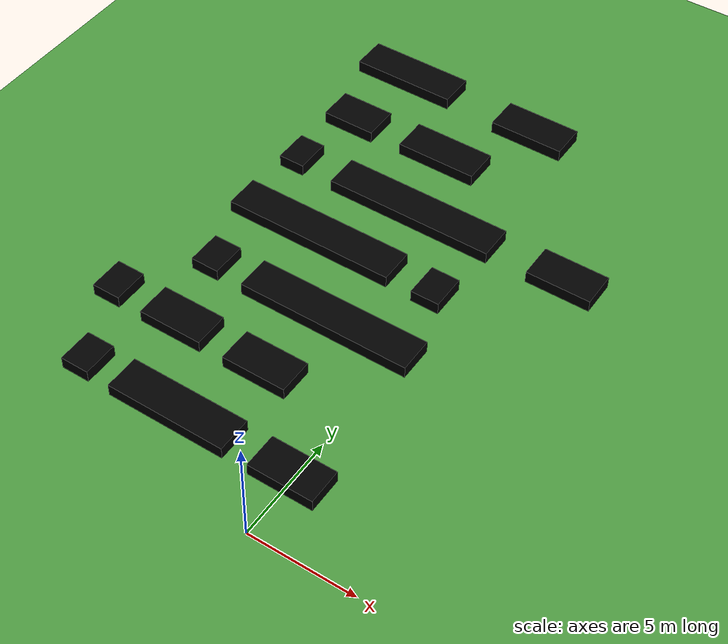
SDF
<sdf version="1.6">
 <world name="default">
  <model name="ground_plane">
   <static>1</static>
   <link name="link">
    <collision name="collision">
     <geometry><plane><normal>0 0 1</normal><size>120 120</size></plane></geometry>
     <surface><friction><ode><mu>100</mu><mu2>50</mu2></ode></friction></surface>
    </collision>
    <visual name="visual">
     <cast_shadows>0</cast_shadows>
     <geometry><plane><normal>0 0 1</normal><size>120 120</size></plane></geometry>
     <material>
      <script><uri>file://media/materials/scripts/gazebo.material</uri><name>Gazebo/Grass</name></script>
     </material>
    </visual>
   </link>
  </model>
  <model name="crop_01_8_clone_0_clone_0_clone_1_clone_clone_clone_clone">
   <link name="crop_01_0::link_0">
    <inertial>
     <mass>10.9148</mass>
     <inertia><ixx>13.7036</ixx><ixy>0</ixy><ixz>0</ixz><iyy>702.087</iyy><iyz>0</iyz><izz>715.772</izz></inertia>
    </inertial>
    <visual name="visual">
     <geometry><box><size>3.0801 1.68705 1</size></box></geometry>
     <material>
      <ambient>0 1 0 1</ambient>
      <diffuse>0 0 0 1</diffuse>
      <specular>0.1 0.1 0.1 1</specular>
      <emissive>0 0 0 0</emissive>
     </material>
    </visual>
    <collision name="collision">
     <geometry><box><size>3.0801 1.68705 1</size></box></geometry>
     <surface>
      <friction>
       <ode><mu>1</mu><mu2>1</mu2><fdir1>0 0 0</fdir1><slip1>0</slip1><slip2>0</slip2></ode>
       <torsional>
        <coefficient>1</coefficient>
        <patch_radius>0</patch_radius>
        <surface_radius>0</surface_radius>
        <use_patch_radius>1</use_patch_radius>
        <ode><slip>0</slip></ode>
       </torsional>
      </friction>
      <bounce><restitution_coefficient>0</restitution_coefficient><threshold>1e+06</threshold></bounce>
      <contact>
       <collide_without_contact>0</collide_without_contact>
       <collide_without_contact_bitmask>1</collide_without_contact_bitmask>
       <collide_bitmask>1</collide_bitmask>
       <ode>
        <soft_cfm>0</soft_cfm>
        <soft_erp>0.2</soft_erp>
        <kp>1e+13</kp>
        <kd>1</kd>
        <max_vel>0.01</max_vel>
        <min_depth>0</min_depth>
       </ode>
       <bullet>
        <split_impulse>1</split_impulse>
        <split_impulse_penetration_threshold>-0.01</split_impulse_penetration_threshold>
        <soft_cfm>0</soft_cfm>
        <soft_erp>0.2</soft_erp>
        <kp>1e+13</kp>
        <kd>1</kd>
       </bullet>
      </contact>
     </surface>
    </collision>
   </link>
   <static>1</static>
   <pose>3.63993 18.0148 0.050638 0 -0 0</pose>
  </model>
  <model name="crop_01_8_clone_0_clone_0_clone_1_clone_clone_clone_clone_0_clone_clone">
   <link name="crop_01_0::link_0">
    <inertial>
     <mass>10.9148</mass>
     <inertia><ixx>13.7036</ixx><ixy>0</ixy><ixz>0</ixz><iyy>702.087</iyy><iyz>0</iyz><izz>715.772</izz></inertia>
    </inertial>
    <visual name="visual">
     <geometry><box><size>3.5821 1.68705 1</size></box></geometry>
     <material>
      <ambient>0 1 0 1</ambient>
      <diffuse>0 0 0 1</diffuse>
      <specular>0.1 0.1 0.1 1</specular>
      <emissive>0 0 0 0</emissive>
     </material>
    </visual>
    <collision name="collision">
     <geometry><box><size>3.5821 1.68705 1</size></box></geometry>
     <surface>
      <friction>
       <ode><mu>1</mu><mu2>1</mu2><fdir1>0 0 0</fdir1><slip1>0</slip1><slip2>0</slip2></ode>
       <torsional>
        <coefficient>1</coefficient>
        <patch_radius>0</patch_radius>
        <surface_radius>0</surface_radius>
        <use_patch_radius>1</use_patch_radius>
        <ode><slip>0</slip></ode>
       </torsional>
      </friction>
      <bounce><restitution_coefficient>0</restitution_coefficient><threshold>1e+06</threshold></bounce>
      <contact>
       <collide_without_contact>0</collide_without_contact>
       <collide_without_contact_bitmask>1</collide_without_contact_bitmask>
       <collide_bitmask>1</collide_bitmask>
       <ode>
        <soft_cfm>0</soft_cfm>
        <soft_erp>0.2</soft_erp>
        <kp>1e+13</kp>
        <kd>1</kd>
        <max_vel>0.01</max_vel>
        <min_depth>0</min_depth>
       </ode>
       <bullet>
        <split_impulse>1</split_impulse>
        <split_impulse_penetration_threshold>-0.01</split_impulse_penetration_threshold>
        <soft_cfm>0</soft_cfm>
        <soft_erp>0.2</soft_erp>
        <kp>1e+13</kp>
        <kd>1</kd>
       </bullet>
      </contact>
     </surface>
    </collision>
   </link>
   <static>1</static>
   <pose>-2.24203 25.508 0.050638 0 -0 0</pose>
  </model>
  <model name="crop_01_8_clone_0_clone_0_clone_1_clone_clone_clone_clone_0_clone_clone_clone">
   <link name="crop_01_0::link_0">
    <inertial>
     <mass>10.9148</mass>
     <inertia><ixx>13.7036</ixx><ixy>0</ixy><ixz>0</ixz><iyy>702.087</iyy><iyz>0</iyz><izz>715.772</izz></inertia>
    </inertial>
    <visual name="visual">
     <geometry><box><size>5.03328 1.68705 1</size></box></geometry>
     <material>
      <ambient>0 1 0 1</ambient>
      <diffuse>0 0 0 1</diffuse>
      <specular>0.1 0.1 0.1 1</specular>
      <emissive>0 0 0 0</emissive>
     </material>
    </visual>
    <collision name="collision">
     <geometry><box><size>5.03328 1.68705 1</size></box></geometry>
     <surface>
      <friction>
       <ode><mu>1</mu><mu2>1</mu2><fdir1>0 0 0</fdir1><slip1>0</slip1><slip2>0</slip2></ode>
       <torsional>
        <coefficient>1</coefficient>
        <patch_radius>0</patch_radius>
        <surface_radius>0</surface_radius>
        <use_patch_radius>1</use_patch_radius>
        <ode><slip>0</slip></ode>
       </torsional>
      </friction>
      <bounce><restitution_coefficient>0</restitution_coefficient><threshold>1e+06</threshold></bounce>
      <contact>
       <collide_without_contact>0</collide_without_contact>
       <collide_without_contact_bitmask>1</collide_without_contact_bitmask>
       <collide_bitmask>1</collide_bitmask>
       <ode>
        <soft_cfm>0</soft_cfm>
        <soft_erp>0.2</soft_erp>
        <kp>1e+13</kp>
        <kd>1</kd>
        <max_vel>0.01</max_vel>
        <min_depth>0</min_depth>
       </ode>
       <bullet>
        <split_impulse>1</split_impulse>
        <split_impulse_penetration_threshold>-0.01</split_impulse_penetration_threshold>
        <soft_cfm>0</soft_cfm>
        <soft_erp>0.2</soft_erp>
        <kp>1e+13</kp>
        <kd>1</kd>
       </bullet>
      </contact>
     </surface>
    </collision>
   </link>
   <static>1</static>
   <pose>-9.13815 25.7228 0.050638 0 -0 0</pose>
  </model>
  <model name="crop_01_8_clone_0_clone_0_clone_1_clone_clone_clone_clone_0_clone_clone_clone_clone">
   <link name="crop_01_0::link_0">
    <inertial>
     <mass>10.9148</mass>
     <inertia><ixx>13.7036</ixx><ixy>0</ixy><ixz>0</ixz><iyy>702.087</iyy><iyz>0</iyz><izz>715.772</izz></inertia>
    </inertial>
    <visual name="visual">
     <geometry><box><size>3.87175 1.68705 1</size></box></geometry>
     <material>
      <ambient>0 1 0 1</ambient>
      <diffuse>0 0 0 1</diffuse>
      <specular>0.1 0.1 0.1 1</specular>
      <emissive>0 0 0 0</emissive>
     </material>
    </visual>
    <collision name="collision">
     <geometry><box><size>3.87175 1.68705 1</size></box></geometry>
     <surface>
      <friction>
       <ode><mu>1</mu><mu2>1</mu2><fdir1>0 0 0</fdir1><slip1>0</slip1><slip2>0</slip2></ode>
       <torsional>
        <coefficient>1</coefficient>
        <patch_radius>0</patch_radius>
        <surface_radius>0</surface_radius>
        <use_patch_radius>1</use_patch_radius>
        <ode><slip>0</slip></ode>
       </torsional>
      </friction>
      <bounce><restitution_coefficient>0</restitution_coefficient><threshold>1e+06</threshold></bounce>
      <contact>
       <collide_without_contact>0</collide_without_contact>
       <collide_without_contact_bitmask>1</collide_without_contact_bitmask>
       <collide_bitmask>1</collide_bitmask>
       <ode>
        <soft_cfm>0</soft_cfm>
        <soft_erp>0.2</soft_erp>
        <kp>1e+13</kp>
        <kd>1</kd>
        <max_vel>0.01</max_vel>
        <min_depth>0</min_depth>
       </ode>
       <bullet>
        <split_impulse>1</split_impulse>
        <split_impulse_penetration_threshold>-0.01</split_impulse_penetration_threshold>
        <soft_cfm>0</soft_cfm>
        <soft_erp>0.2</soft_erp>
        <kp>1e+13</kp>
        <kd>1</kd>
       </bullet>
      </contact>
     </surface>
    </collision>
   </link>
   <static>1</static>
   <pose>-4.85078 21.8054 0.050638 0 -0 0</pose>
  </model>
  <model name="crop_01_8_clone_0_clone_0_clone_1_clone_clone_clone_clone_0_clone_clone_clone_clone_clone">
   <link name="crop_01_0::link_0">
    <inertial>
     <mass>10.9148</mass>
     <inertia><ixx>13.7036</ixx><ixy>0</ixy><ixz>0</ixz><iyy>702.087</iyy><iyz>0</iyz><izz>715.772</izz></inertia>
    </inertial>
    <visual name="visual">
     <geometry><box><size>2.58338 1.68705 1</size></box></geometry>
     <material>
      <ambient>0 1 0 1</ambient>
      <diffuse>0 0 0 1</diffuse>
      <specular>0.1 0.1 0.1 1</specular>
      <emissive>0 0 0 0</emissive>
     </material>
    </visual>
    <collision name="collision">
     <geometry><box><size>2.58338 1.68705 1</size></box></geometry>
     <surface>
      <friction>
       <ode><mu>1</mu><mu2>1</mu2><fdir1>0 0 0</fdir1><slip1>0</slip1><slip2>0</slip2></ode>
       <torsional>
        <coefficient>1</coefficient>
        <patch_radius>0</patch_radius>
        <surface_radius>0</surface_radius>
        <use_patch_radius>1</use_patch_radius>
        <ode><slip>0</slip></ode>
       </torsional>
      </friction>
      <bounce><restitution_coefficient>0</restitution_coefficient><threshold>1e+06</threshold></bounce>
      <contact>
       <collide_without_contact>0</collide_without_contact>
       <collide_without_contact_bitmask>1</collide_without_contact_bitmask>
       <collide_bitmask>1</collide_bitmask>
       <ode>
        <soft_cfm>0</soft_cfm>
        <soft_erp>0.2</soft_erp>
        <kp>1e+13</kp>
        <kd>1</kd>
        <max_vel>0.01</max_vel>
        <min_depth>0</min_depth>
       </ode>
       <bullet>
        <split_impulse>1</split_impulse>
        <split_impulse_penetration_threshold>-0.01</split_impulse_penetration_threshold>
        <soft_cfm>0</soft_cfm>
        <soft_erp>0.2</soft_erp>
        <kp>1e+13</kp>
        <kd>1</kd>
       </bullet>
      </contact>
     </surface>
    </collision>
   </link>
   <static>1</static>
   <pose>-9.57706 21.6971 0.050638 0 -0 0</pose>
  </model>
  <model name="crop_01_8_clone_0_clone_0_clone_1_clone_clone_clone_clone_0_clone_clone_1">
   <link name="crop_01_0::link_0">
    <inertial>
     <mass>10.9148</mass>
     <inertia><ixx>13.7036</ixx><ixy>0</ixy><ixz>0</ixz><iyy>702.087</iyy><iyz>0</iyz><izz>715.772</izz></inertia>
    </inertial>
    <visual name="visual">
     <geometry><box><size>8.14863 1.68705 1</size></box></geometry>
     <material>
      <ambient>0 1 0 1</ambient>
      <diffuse>0 0 0 1</diffuse>
      <specular>0.1 0.1 0.1 1</specular>
      <emissive>0 0 0 0</emissive>
     </material>
    </visual>
    <collision name="collision">
     <geometry><box><size>8.14863 1.68705 1</size></box></geometry>
     <surface>
      <friction>
       <ode><mu>1</mu><mu2>1</mu2><fdir1>0 0 0</fdir1><slip1>0</slip1><slip2>0</slip2></ode>
       <torsional>
        <coefficient>1</coefficient>
        <patch_radius>0</patch_radius>
        <surface_radius>0</surface_radius>
        <use_patch_radius>1</use_patch_radius>
        <ode><slip>0</slip></ode>
       </torsional>
      </friction>
      <bounce><restitution_coefficient>0</restitution_coefficient><threshold>1e+06</threshold></bounce>
      <contact>
       <collide_without_contact>0</collide_without_contact>
       <collide_without_contact_bitmask>1</collide_without_contact_bitmask>
       <collide_bitmask>1</collide_bitmask>
       <ode>
        <soft_cfm>0</soft_cfm>
        <soft_erp>0.2</soft_erp>
        <kp>1e+13</kp>
        <kd>1</kd>
        <max_vel>0.01</max_vel>
        <min_depth>0</min_depth>
       </ode>
       <bullet>
        <split_impulse>1</split_impulse>
        <split_impulse_penetration_threshold>-0.01</split_impulse_penetration_threshold>
        <soft_cfm>0</soft_cfm>
        <soft_erp>0.2</soft_erp>
        <kp>1e+13</kp>
        <kd>1</kd>
       </bullet>
      </contact>
     </surface>
    </collision>
   </link>
   <static>1</static>
   <pose>-3.92943 17.9844 0.050638 0 -0 0</pose>
  </model>
  <model name="crop_01_8_clone_0_clone_0_clone_1_clone_clone_clone_clone_0_clone_clone_clone_clone_clone_0">
   <link name="crop_01_0::link_0">
    <inertial>
     <mass>10.9148</mass>
     <inertia><ixx>13.7036</ixx><ixy>0</ixy><ixz>0</ixz><iyy>702.087</iyy><iyz>0</iyz><izz>715.772</izz></inertia>
    </inertial>
    <visual name="visual">
     <geometry><box><size>1.25333 1.68705 1</size></box></geometry>
     <material>
      <ambient>0 1 0 1</ambient>
      <diffuse>0 0 0 1</diffuse>
      <specular>0.1 0.1 0.1 1</specular>
      <emissive>0 0 0 0</emissive>
     </material>
    </visual>
    <collision name="collision">
     <geometry><box><size>1.25333 1.68705 1</size></box></geometry>
     <surface>
      <friction>
       <ode><mu>1</mu><mu2>1</mu2><fdir1>0 0 0</fdir1><slip1>0</slip1><slip2>0</slip2></ode>
       <torsional>
        <coefficient>1</coefficient>
        <patch_radius>0</patch_radius>
        <surface_radius>0</surface_radius>
        <use_patch_radius>1</use_patch_radius>
        <ode><slip>0</slip></ode>
       </torsional>
      </friction>
      <bounce><restitution_coefficient>0</restitution_coefficient><threshold>1e+06</threshold></bounce>
      <contact>
       <collide_without_contact>0</collide_without_contact>
       <collide_without_contact_bitmask>1</collide_without_contact_bitmask>
       <collide_bitmask>1</collide_bitmask>
       <ode>
        <soft_cfm>0</soft_cfm>
        <soft_erp>0.2</soft_erp>
        <kp>1e+13</kp>
        <kd>1</kd>
        <max_vel>0.01</max_vel>
        <min_depth>0</min_depth>
       </ode>
       <bullet>
        <split_impulse>1</split_impulse>
        <split_impulse_penetration_threshold>-0.01</split_impulse_penetration_threshold>
        <soft_cfm>0</soft_cfm>
        <soft_erp>0.2</soft_erp>
        <kp>1e+13</kp>
        <kd>1</kd>
       </bullet>
      </contact>
     </surface>
    </collision>
   </link>
   <static>1</static>
   <pose>-10.2372 18.0651 0.050638 0 -0 0</pose>
  </model>
  <model name="crop_01_8_clone_0_clone_0_clone_1_clone_clone_clone_clone_0_clone_clone_4">
   <link name="crop_01_0::link_0">
    <inertial>
     <mass>10.9148</mass>
     <inertia><ixx>13.7036</ixx><ixy>0</ixy><ixz>0</ixz><iyy>702.087</iyy><iyz>0</iyz><izz>715.772</izz></inertia>
    </inertial>
    <visual name="visual">
     <geometry><box><size>8.26711 1.68705 1</size></box></geometry>
     <material>
      <ambient>0 1 0 1</ambient>
      <diffuse>0 0 0 1</diffuse>
      <specular>0.1 0.1 0.1 1</specular>
      <emissive>0 0 0 0</emissive>
     </material>
    </visual>
    <collision name="collision">
     <geometry><box><size>8.26711 1.68705 1</size></box></geometry>
     <surface>
      <friction>
       <ode><mu>1</mu><mu2>1</mu2><fdir1>0 0 0</fdir1><slip1>0</slip1><slip2>0</slip2></ode>
       <torsional>
        <coefficient>1</coefficient>
        <patch_radius>0</patch_radius>
        <surface_radius>0</surface_radius>
        <use_patch_radius>1</use_patch_radius>
        <ode><slip>0</slip></ode>
       </torsional>
      </friction>
      <bounce><restitution_coefficient>0</restitution_coefficient><threshold>1e+06</threshold></bounce>
      <contact>
       <collide_without_contact>0</collide_without_contact>
       <collide_without_contact_bitmask>1</collide_without_contact_bitmask>
       <collide_bitmask>1</collide_bitmask>
       <ode>
        <soft_cfm>0</soft_cfm>
        <soft_erp>0.2</soft_erp>
        <kp>1e+13</kp>
        <kd>1</kd>
        <max_vel>0.01</max_vel>
        <min_depth>0</min_depth>
       </ode>
       <bullet>
        <split_impulse>1</split_impulse>
        <split_impulse_penetration_threshold>-0.01</split_impulse_penetration_threshold>
        <soft_cfm>0</soft_cfm>
        <soft_erp>0.2</soft_erp>
        <kp>1e+13</kp>
        <kd>1</kd>
       </bullet>
      </contact>
     </surface>
    </collision>
   </link>
   <static>1</static>
   <pose>-6.77935 14.3691 0.050638 0 -0 0</pose>
  </model>
  <model name="crop_01_8_clone_0_clone_0_clone_1_clone_clone_clone_clone_clone">
   <link name="crop_01_0::link_0">
    <inertial>
     <mass>10.9148</mass>
     <inertia><ixx>13.7036</ixx><ixy>0</ixy><ixz>0</ixz><iyy>702.087</iyy><iyz>0</iyz><izz>715.772</izz></inertia>
    </inertial>
    <visual name="visual">
     <geometry><box><size>1.36286 1.68705 1</size></box></geometry>
     <material>
      <ambient>0 1 0 1</ambient>
      <diffuse>0 0 0 1</diffuse>
      <specular>0.1 0.1 0.1 1</specular>
      <emissive>0 0 0 0</emissive>
     </material>
    </visual>
    <collision name="collision">
     <geometry><box><size>1.36286 1.68705 1</size></box></geometry>
     <surface>
      <friction>
       <ode><mu>1</mu><mu2>1</mu2><fdir1>0 0 0</fdir1><slip1>0</slip1><slip2>0</slip2></ode>
       <torsional>
        <coefficient>1</coefficient>
        <patch_radius>0</patch_radius>
        <surface_radius>0</surface_radius>
        <use_patch_radius>1</use_patch_radius>
        <ode><slip>0</slip></ode>
       </torsional>
      </friction>
      <bounce><restitution_coefficient>0</restitution_coefficient><threshold>1e+06</threshold></bounce>
      <contact>
       <collide_without_contact>0</collide_without_contact>
       <collide_without_contact_bitmask>1</collide_without_contact_bitmask>
       <collide_bitmask>1</collide_bitmask>
       <ode>
        <soft_cfm>0</soft_cfm>
        <soft_erp>0.2</soft_erp>
        <kp>1e+13</kp>
        <kd>1</kd>
        <max_vel>0.01</max_vel>
        <min_depth>0</min_depth>
       </ode>
       <bullet>
        <split_impulse>1</split_impulse>
        <split_impulse_penetration_threshold>-0.01</split_impulse_penetration_threshold>
        <soft_cfm>0</soft_cfm>
        <soft_erp>0.2</soft_erp>
        <kp>1e+13</kp>
        <kd>1</kd>
       </bullet>
      </contact>
     </surface>
    </collision>
   </link>
   <static>1</static>
   <pose>-0.673769 14.3056 0.050638 0 -0 0</pose>
  </model>
  <model name="crop_01_8_clone_0_clone_0_clone_1_clone_clone_clone_clone_0_clone_clone_4_clone_0">
   <link name="crop_01_0::link_0">
    <inertial>
     <mass>10.9148</mass>
     <inertia><ixx>13.7036</ixx><ixy>0</ixy><ixz>0</ixz><iyy>702.087</iyy><iyz>0</iyz><izz>715.772</izz></inertia>
    </inertial>
    <visual name="visual">
     <geometry><box><size>8.26711 1.68705 1</size></box></geometry>
     <material>
      <ambient>0 1 0 1</ambient>
      <diffuse>0 0 0 1</diffuse>
      <specular>0.1 0.1 0.1 1</specular>
      <emissive>0 0 0 0</emissive>
     </material>
    </visual>
    <collision name="collision">
     <geometry><box><size>8.26711 1.68705 1</size></box></geometry>
     <surface>
      <friction>
       <ode><mu>1</mu><mu2>1</mu2><fdir1>0 0 0</fdir1><slip1>0</slip1><slip2>0</slip2></ode>
       <torsional>
        <coefficient>1</coefficient>
        <patch_radius>0</patch_radius>
        <surface_radius>0</surface_radius>
        <use_patch_radius>1</use_patch_radius>
        <ode><slip>0</slip></ode>
       </torsional>
      </friction>
      <bounce><restitution_coefficient>0</restitution_coefficient><threshold>1e+06</threshold></bounce>
      <contact>
       <collide_without_contact>0</collide_without_contact>
       <collide_without_contact_bitmask>1</collide_without_contact_bitmask>
       <collide_bitmask>1</collide_bitmask>
       <ode>
        <soft_cfm>0</soft_cfm>
        <soft_erp>0.2</soft_erp>
        <kp>1e+13</kp>
        <kd>1</kd>
        <max_vel>0.01</max_vel>
        <min_depth>0</min_depth>
       </ode>
       <bullet>
        <split_impulse>1</split_impulse>
        <split_impulse_penetration_threshold>-0.01</split_impulse_penetration_threshold>
        <soft_cfm>0</soft_cfm>
        <soft_erp>0.2</soft_erp>
        <kp>1e+13</kp>
        <kd>1</kd>
       </bullet>
      </contact>
     </surface>
    </collision>
   </link>
   <static>1</static>
   <pose>-3.37849 10.5853 0.050638 0 -0 0</pose>
  </model>
  <model name="crop_01_8_clone_0_clone_0_clone_1_clone_clone_clone_clone_clone_clone_0">
   <link name="crop_01_0::link_0">
    <inertial>
     <mass>10.9148</mass>
     <inertia><ixx>13.7036</ixx><ixy>0</ixy><ixz>0</ixz><iyy>702.087</iyy><iyz>0</iyz><izz>715.772</izz></inertia>
    </inertial>
    <visual name="visual">
     <geometry><box><size>1.36286 1.68705 1</size></box></geometry>
     <material>
      <ambient>0 1 0 1</ambient>
      <diffuse>0 0 0 1</diffuse>
      <specular>0.1 0.1 0.1 1</specular>
      <emissive>0 0 0 0</emissive>
     </material>
    </visual>
    <collision name="collision">
     <geometry><box><size>1.36286 1.68705 1</size></box></geometry>
     <surface>
      <friction>
       <ode><mu>1</mu><mu2>1</mu2><fdir1>0 0 0</fdir1><slip1>0</slip1><slip2>0</slip2></ode>
       <torsional>
        <coefficient>1</coefficient>
        <patch_radius>0</patch_radius>
        <surface_radius>0</surface_radius>
        <use_patch_radius>1</use_patch_radius>
        <ode><slip>0</slip></ode>
       </torsional>
      </friction>
      <bounce><restitution_coefficient>0</restitution_coefficient><threshold>1e+06</threshold></bounce>
      <contact>
       <collide_without_contact>0</collide_without_contact>
       <collide_without_contact_bitmask>1</collide_without_contact_bitmask>
       <collide_bitmask>1</collide_bitmask>
       <ode>
        <soft_cfm>0</soft_cfm>
        <soft_erp>0.2</soft_erp>
        <kp>1e+13</kp>
        <kd>1</kd>
        <max_vel>0.01</max_vel>
        <min_depth>0</min_depth>
       </ode>
       <bullet>
        <split_impulse>1</split_impulse>
        <split_impulse_penetration_threshold>-0.01</split_impulse_penetration_threshold>
        <soft_cfm>0</soft_cfm>
        <soft_erp>0.2</soft_erp>
        <kp>1e+13</kp>
        <kd>1</kd>
       </bullet>
      </contact>
     </surface>
    </collision>
   </link>
   <static>1</static>
   <pose>-9.48283 10.6105 0.050638 0 -0 0</pose>
  </model>
  <model name="crop_01_8_clone_0_clone_0_clone_1_clone_clone_clone_clone_clone_1">
   <link name="crop_01_0::link_0">
    <inertial>
     <mass>10.9148</mass>
     <inertia><ixx>13.7036</ixx><ixy>0</ixy><ixz>0</ixz><iyy>702.087</iyy><iyz>0</iyz><izz>715.772</izz></inertia>
    </inertial>
    <visual name="visual">
     <geometry><box><size>3.0801 1.68705 1</size></box></geometry>
     <material>
      <ambient>0 1 0 1</ambient>
      <diffuse>0 0 0 1</diffuse>
      <specular>0.1 0.1 0.1 1</specular>
      <emissive>0 0 0 0</emissive>
     </material>
    </visual>
    <collision name="collision">
     <geometry><box><size>3.0801 1.68705 1</size></box></geometry>
     <surface>
      <friction>
       <ode><mu>1</mu><mu2>1</mu2><fdir1>0 0 0</fdir1><slip1>0</slip1><slip2>0</slip2></ode>
       <torsional>
        <coefficient>1</coefficient>
        <patch_radius>0</patch_radius>
        <surface_radius>0</surface_radius>
        <use_patch_radius>1</use_patch_radius>
        <ode><slip>0</slip></ode>
       </torsional>
      </friction>
      <bounce><restitution_coefficient>0</restitution_coefficient><threshold>1e+06</threshold></bounce>
      <contact>
       <collide_without_contact>0</collide_without_contact>
       <collide_without_contact_bitmask>1</collide_without_contact_bitmask>
       <collide_bitmask>1</collide_bitmask>
       <ode>
        <soft_cfm>0</soft_cfm>
        <soft_erp>0.2</soft_erp>
        <kp>1e+13</kp>
        <kd>1</kd>
        <max_vel>0.01</max_vel>
        <min_depth>0</min_depth>
       </ode>
       <bullet>
        <split_impulse>1</split_impulse>
        <split_impulse_penetration_threshold>-0.01</split_impulse_penetration_threshold>
        <soft_cfm>0</soft_cfm>
        <soft_erp>0.2</soft_erp>
        <kp>1e+13</kp>
        <kd>1</kd>
       </bullet>
      </contact>
     </surface>
    </collision>
   </link>
   <static>1</static>
   <pose>-4.16851 6.89202 0.050638 0 -0 0</pose>
  </model>
  <model name="crop_01_8_clone_0_clone_0_clone_1_clone_clone_clone_clone_clone_2">
   <link name="crop_01_0::link_0">
    <inertial>
     <mass>10.9148</mass>
     <inertia><ixx>13.7036</ixx><ixy>0</ixy><ixz>0</ixz><iyy>702.087</iyy><iyz>0</iyz><izz>715.772</izz></inertia>
    </inertial>
    <visual name="visual">
     <geometry><box><size>3.0801 1.68705 1</size></box></geometry>
     <material>
      <ambient>0 1 0 1</ambient>
      <diffuse>0 0 0 1</diffuse>
      <specular>0.1 0.1 0.1 1</specular>
      <emissive>0 0 0 0</emissive>
     </material>
    </visual>
    <collision name="collision">
     <geometry><box><size>3.0801 1.68705 1</size></box></geometry>
     <surface>
      <friction>
       <ode><mu>1</mu><mu2>1</mu2><fdir1>0 0 0</fdir1><slip1>0</slip1><slip2>0</slip2></ode>
       <torsional>
        <coefficient>1</coefficient>
        <patch_radius>0</patch_radius>
        <surface_radius>0</surface_radius>
        <use_patch_radius>1</use_patch_radius>
        <ode><slip>0</slip></ode>
       </torsional>
      </friction>
      <bounce><restitution_coefficient>0</restitution_coefficient><threshold>1e+06</threshold></bounce>
      <contact>
       <collide_without_contact>0</collide_without_contact>
       <collide_without_contact_bitmask>1</collide_without_contact_bitmask>
       <collide_bitmask>1</collide_bitmask>
       <ode>
        <soft_cfm>0</soft_cfm>
        <soft_erp>0.2</soft_erp>
        <kp>1e+13</kp>
        <kd>1</kd>
        <max_vel>0.01</max_vel>
        <min_depth>0</min_depth>
       </ode>
       <bullet>
        <split_impulse>1</split_impulse>
        <split_impulse_penetration_threshold>-0.01</split_impulse_penetration_threshold>
        <soft_cfm>0</soft_cfm>
        <soft_erp>0.2</soft_erp>
        <kp>1e+13</kp>
        <kd>1</kd>
       </bullet>
      </contact>
     </surface>
    </collision>
   </link>
   <static>1</static>
   <pose>-8.50747 6.9673 0.050638 0 -0 0</pose>
  </model>
  <model name="crop_01_8_clone_0_clone_0_clone_1_clone_clone_clone_clone_clone_clone_0_clone">
   <link name="crop_01_0::link_0">
    <inertial>
     <mass>10.9148</mass>
     <inertia><ixx>13.7036</ixx><ixy>0</ixy><ixz>0</ixz><iyy>702.087</iyy><iyz>0</iyz><izz>715.772</izz></inertia>
    </inertial>
    <visual name="visual">
     <geometry><box><size>1.36286 1.68705 1</size></box></geometry>
     <material>
      <ambient>0 1 0 1</ambient>
      <diffuse>0 0 0 1</diffuse>
      <specular>0.1 0.1 0.1 1</specular>
      <emissive>0 0 0 0</emissive>
     </material>
    </visual>
    <collision name="collision">
     <geometry><box><size>1.36286 1.68705 1</size></box></geometry>
     <surface>
      <friction>
       <ode><mu>1</mu><mu2>1</mu2><fdir1>0 0 0</fdir1><slip1>0</slip1><slip2>0</slip2></ode>
       <torsional>
        <coefficient>1</coefficient>
        <patch_radius>0</patch_radius>
        <surface_radius>0</surface_radius>
        <use_patch_radius>1</use_patch_radius>
        <ode><slip>0</slip></ode>
       </torsional>
      </friction>
      <bounce><restitution_coefficient>0</restitution_coefficient><threshold>1e+06</threshold></bounce>
      <contact>
       <collide_without_contact>0</collide_without_contact>
       <collide_without_contact_bitmask>1</collide_without_contact_bitmask>
       <collide_bitmask>1</collide_bitmask>
       <ode>
        <soft_cfm>0</soft_cfm>
        <soft_erp>0.2</soft_erp>
        <kp>1e+13</kp>
        <kd>1</kd>
        <max_vel>0.01</max_vel>
        <min_depth>0</min_depth>
       </ode>
       <bullet>
        <split_impulse>1</split_impulse>
        <split_impulse_penetration_threshold>-0.01</split_impulse_penetration_threshold>
        <soft_cfm>0</soft_cfm>
        <soft_erp>0.2</soft_erp>
        <kp>1e+13</kp>
        <kd>1</kd>
       </bullet>
      </contact>
     </surface>
    </collision>
   </link>
   <static>1</static>
   <pose>-11.974 7.03147 0.050638 0 -0 0</pose>
  </model>
  <model name="crop_01_8_clone_0_clone_0_clone_1_clone_clone_clone_clone_clone_2_clone">
   <link name="crop_01_0::link_0">
    <inertial>
     <mass>10.9148</mass>
     <inertia><ixx>13.7036</ixx><ixy>0</ixy><ixz>0</ixz><iyy>702.087</iyy><iyz>0</iyz><izz>715.772</izz></inertia>
    </inertial>
    <visual name="visual">
     <geometry><box><size>3.0801 1.68705 1</size></box></geometry>
     <material>
      <ambient>0 1 0 1</ambient>
      <diffuse>0 0 0 1</diffuse>
      <specular>0.1 0.1 0.1 1</specular>
      <emissive>0 0 0 0</emissive>
     </material>
    </visual>
    <collision name="collision">
     <geometry><box><size>3.0801 1.68705 1</size></box></geometry>
     <surface>
      <friction>
       <ode><mu>1</mu><mu2>1</mu2><fdir1>0 0 0</fdir1><slip1>0</slip1><slip2>0</slip2></ode>
       <torsional>
        <coefficient>1</coefficient>
        <patch_radius>0</patch_radius>
        <surface_radius>0</surface_radius>
        <use_patch_radius>1</use_patch_radius>
        <ode><slip>0</slip></ode>
       </torsional>
      </friction>
      <bounce><restitution_coefficient>0</restitution_coefficient><threshold>1e+06</threshold></bounce>
      <contact>
       <collide_without_contact>0</collide_without_contact>
       <collide_without_contact_bitmask>1</collide_without_contact_bitmask>
       <collide_bitmask>1</collide_bitmask>
       <ode>
        <soft_cfm>0</soft_cfm>
        <soft_erp>0.2</soft_erp>
        <kp>1e+13</kp>
        <kd>1</kd>
        <max_vel>0.01</max_vel>
        <min_depth>0</min_depth>
       </ode>
       <bullet>
        <split_impulse>1</split_impulse>
        <split_impulse_penetration_threshold>-0.01</split_impulse_penetration_threshold>
        <soft_cfm>0</soft_cfm>
        <soft_erp>0.2</soft_erp>
        <kp>1e+13</kp>
        <kd>1</kd>
       </bullet>
      </contact>
     </surface>
    </collision>
   </link>
   <static>1</static>
   <pose>-0.091975 3.07821 0.050638 0 -0 0</pose>
  </model>
  <model name="crop_01_8_clone_0_clone_0_clone_1_clone_clone_clone_clone_1">
   <link name="crop_01_0::link_0">
    <inertial>
     <mass>10.9148</mass>
     <inertia><ixx>13.7036</ixx><ixy>0</ixy><ixz>0</ixz><iyy>702.087</iyy><iyz>0</iyz><izz>715.772</izz></inertia>
    </inertial>
    <visual name="visual">
     <geometry><box><size>5.69317 1.68705 1</size></box></geometry>
     <material>
      <ambient>0 1 0 1</ambient>
      <diffuse>0 0 0 1</diffuse>
      <specular>0.1 0.1 0.1 1</specular>
      <emissive>0 0 0 0</emissive>
     </material>
    </visual>
    <collision name="collision">
     <geometry><box><size>5.69317 1.68705 1</size></box></geometry>
     <surface>
      <friction>
       <ode><mu>1</mu><mu2>1</mu2><fdir1>0 0 0</fdir1><slip1>0</slip1><slip2>0</slip2></ode>
       <torsional>
        <coefficient>1</coefficient>
        <patch_radius>0</patch_radius>
        <surface_radius>0</surface_radius>
        <use_patch_radius>1</use_patch_radius>
        <ode><slip>0</slip></ode>
       </torsional>
      </friction>
      <bounce><restitution_coefficient>0</restitution_coefficient><threshold>1e+06</threshold></bounce>
      <contact>
       <collide_without_contact>0</collide_without_contact>
       <collide_without_contact_bitmask>1</collide_without_contact_bitmask>
       <collide_bitmask>1</collide_bitmask>
       <ode>
        <soft_cfm>0</soft_cfm>
        <soft_erp>0.2</soft_erp>
        <kp>1e+13</kp>
        <kd>1</kd>
        <max_vel>0.01</max_vel>
        <min_depth>0</min_depth>
       </ode>
       <bullet>
        <split_impulse>1</split_impulse>
        <split_impulse_penetration_threshold>-0.01</split_impulse_penetration_threshold>
        <soft_cfm>0</soft_cfm>
        <soft_erp>0.2</soft_erp>
        <kp>1e+13</kp>
        <kd>1</kd>
       </bullet>
      </contact>
     </surface>
    </collision>
   </link>
   <static>1</static>
   <pose>-5.73478 3.12502 0.050638 0 -0 0</pose>
  </model>
  <model name="crop_01_8_clone_0_clone_0_clone_1_clone_clone_clone_clone_clone_clone_0_clone_0">
   <link name="crop_01_0::link_0">
    <inertial>
     <mass>10.9148</mass>
     <inertia><ixx>13.7036</ixx><ixy>0</ixy><ixz>0</ixz><iyy>702.087</iyy><iyz>0</iyz><izz>715.772</izz></inertia>
    </inertial>
    <visual name="visual">
     <geometry><box><size>1.36286 1.68705 1</size></box></geometry>
     <material>
      <ambient>0 1 0 1</ambient>
      <diffuse>0 0 0 1</diffuse>
      <specular>0.1 0.1 0.1 1</specular>
      <emissive>0 0 0 0</emissive>
     </material>
    </visual>
    <collision name="collision">
     <geometry><box><size>1.36286 1.68705 1</size></box></geometry>
     <surface>
      <friction>
       <ode><mu>1</mu><mu2>1</mu2><fdir1>0 0 0</fdir1><slip1>0</slip1><slip2>0</slip2></ode>
       <torsional>
        <coefficient>1</coefficient>
        <patch_radius>0</patch_radius>
        <surface_radius>0</surface_radius>
        <use_patch_radius>1</use_patch_radius>
        <ode><slip>0</slip></ode>
       </torsional>
      </friction>
      <bounce><restitution_coefficient>0</restitution_coefficient><threshold>1e+06</threshold></bounce>
      <contact>
       <collide_without_contact>0</collide_without_contact>
       <collide_without_contact_bitmask>1</collide_without_contact_bitmask>
       <collide_bitmask>1</collide_bitmask>
       <ode>
        <soft_cfm>0</soft_cfm>
        <soft_erp>0.2</soft_erp>
        <kp>1e+13</kp>
        <kd>1</kd>
        <max_vel>0.01</max_vel>
        <min_depth>0</min_depth>
       </ode>
       <bullet>
        <split_impulse>1</split_impulse>
        <split_impulse_penetration_threshold>-0.01</split_impulse_penetration_threshold>
        <soft_cfm>0</soft_cfm>
        <soft_erp>0.2</soft_erp>
        <kp>1e+13</kp>
        <kd>1</kd>
       </bullet>
      </contact>
     </surface>
    </collision>
   </link>
   <static>1</static>
   <pose>-10.3936 3.16865 0.050638 0 -0 0</pose>
  </model>
 </world>
</sdf>
